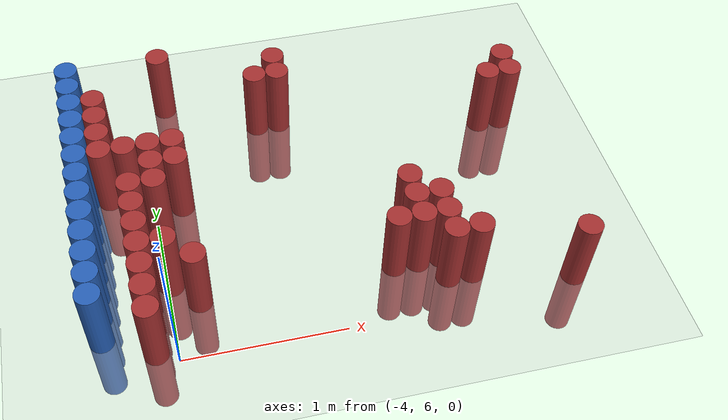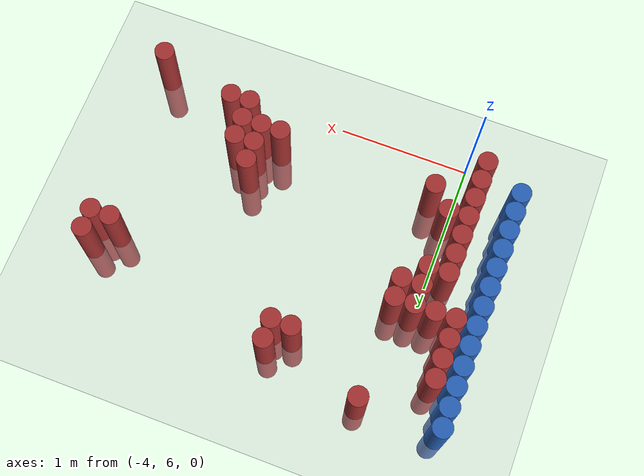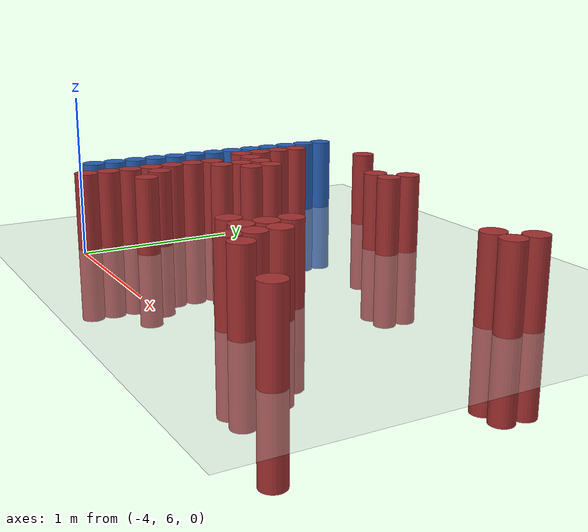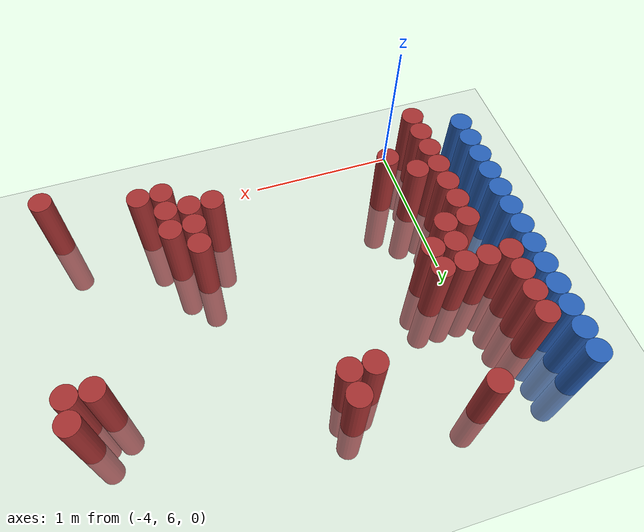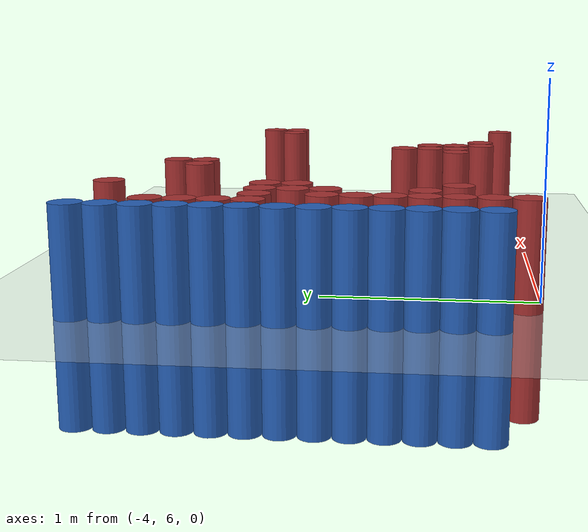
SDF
<sdf version="1.6">
 <world name="default">
  <model name="ground_plane">
   <static>1</static>
   <link name="link">
    <collision name="collision">
     <geometry><plane><normal>0 0 1</normal><size>100 100</size></plane></geometry>
     <surface><friction><ode><mu>100</mu><mu2>50</mu2></ode></friction></surface>
    </collision>
    <visual name="visual">
     <cast_shadows>0</cast_shadows>
     <geometry><plane><normal>0 0 1</normal><size>100 100</size></plane></geometry>
     <material>
      <script><uri>file://media/materials/scripts/gazebo.material</uri><name>Gazebo/Grey</name></script>
     </material>
    </visual>
   </link>
  </model>
  <model name="unit_cylinder_103">
   <static>1</static>
   <pose>-4.425000 6.225000 0.000000 0.000000 0.000000 0.000000</pose>
   <link name="link">
    <inertial>
     <mass>1</mass>
     <inertia><ixx>0.145833</ixx><ixy>0</ixy><ixz>0</ixz><iyy>0.145833</iyy><iyz>0</iyz><izz>0.125</izz></inertia>
    </inertial>
    <collision name="collision">
     <geometry><cylinder><radius>0.075000</radius><length>1</length></cylinder></geometry>
    </collision>
    <visual name="visual">
     <geometry><cylinder><radius>0.075000</radius><length>1</length></cylinder></geometry>
     <material>
      <ambient>0.152000 0.379000 0.720000 1</ambient>
      <diffuse>0.152000 0.379000 0.720000 1</diffuse>
     </material>
     <material>
      <script><name>Gazebo/Grey</name><uri>file://media/materials/scripts/gazebo.material</uri></script>
     </material>
    </visual>
   </link>
  </model>
  <model name="unit_cylinder_104">
   <static>1</static>
   <pose>-4.425000 6.375000 0.000000 0.000000 0.000000 0.000000</pose>
   <link name="link">
    <inertial>
     <mass>1</mass>
     <inertia><ixx>0.145833</ixx><ixy>0</ixy><ixz>0</ixz><iyy>0.145833</iyy><iyz>0</iyz><izz>0.125</izz></inertia>
    </inertial>
    <collision name="collision">
     <geometry><cylinder><radius>0.075000</radius><length>1</length></cylinder></geometry>
    </collision>
    <visual name="visual">
     <geometry><cylinder><radius>0.075000</radius><length>1</length></cylinder></geometry>
     <material>
      <ambient>0.152000 0.379000 0.720000 1</ambient>
      <diffuse>0.152000 0.379000 0.720000 1</diffuse>
     </material>
     <material>
      <script><name>Gazebo/Grey</name><uri>file://media/materials/scripts/gazebo.material</uri></script>
     </material>
    </visual>
   </link>
  </model>
  <model name="unit_cylinder_105">
   <static>1</static>
   <pose>-4.425000 6.525000 0.000000 0.000000 0.000000 0.000000</pose>
   <link name="link">
    <inertial>
     <mass>1</mass>
     <inertia><ixx>0.145833</ixx><ixy>0</ixy><ixz>0</ixz><iyy>0.145833</iyy><iyz>0</iyz><izz>0.125</izz></inertia>
    </inertial>
    <collision name="collision">
     <geometry><cylinder><radius>0.075000</radius><length>1</length></cylinder></geometry>
    </collision>
    <visual name="visual">
     <geometry><cylinder><radius>0.075000</radius><length>1</length></cylinder></geometry>
     <material>
      <ambient>0.152000 0.379000 0.720000 1</ambient>
      <diffuse>0.152000 0.379000 0.720000 1</diffuse>
     </material>
     <material>
      <script><name>Gazebo/Grey</name><uri>file://media/materials/scripts/gazebo.material</uri></script>
     </material>
    </visual>
   </link>
  </model>
  <model name="unit_cylinder_106">
   <static>1</static>
   <pose>-4.425000 6.675000 0.000000 0.000000 0.000000 0.000000</pose>
   <link name="link">
    <inertial>
     <mass>1</mass>
     <inertia><ixx>0.145833</ixx><ixy>0</ixy><ixz>0</ixz><iyy>0.145833</iyy><iyz>0</iyz><izz>0.125</izz></inertia>
    </inertial>
    <collision name="collision">
     <geometry><cylinder><radius>0.075000</radius><length>1</length></cylinder></geometry>
    </collision>
    <visual name="visual">
     <geometry><cylinder><radius>0.075000</radius><length>1</length></cylinder></geometry>
     <material>
      <ambient>0.152000 0.379000 0.720000 1</ambient>
      <diffuse>0.152000 0.379000 0.720000 1</diffuse>
     </material>
     <material>
      <script><name>Gazebo/Grey</name><uri>file://media/materials/scripts/gazebo.material</uri></script>
     </material>
    </visual>
   </link>
  </model>
  <model name="unit_cylinder_107">
   <static>1</static>
   <pose>-4.425000 6.825000 0.000000 0.000000 0.000000 0.000000</pose>
   <link name="link">
    <inertial>
     <mass>1</mass>
     <inertia><ixx>0.145833</ixx><ixy>0</ixy><ixz>0</ixz><iyy>0.145833</iyy><iyz>0</iyz><izz>0.125</izz></inertia>
    </inertial>
    <collision name="collision">
     <geometry><cylinder><radius>0.075000</radius><length>1</length></cylinder></geometry>
    </collision>
    <visual name="visual">
     <geometry><cylinder><radius>0.075000</radius><length>1</length></cylinder></geometry>
     <material>
      <ambient>0.152000 0.379000 0.720000 1</ambient>
      <diffuse>0.152000 0.379000 0.720000 1</diffuse>
     </material>
     <material>
      <script><name>Gazebo/Grey</name><uri>file://media/materials/scripts/gazebo.material</uri></script>
     </material>
    </visual>
   </link>
  </model>
  <model name="unit_cylinder_108">
   <static>1</static>
   <pose>-4.425000 6.975000 0.000000 0.000000 0.000000 0.000000</pose>
   <link name="link">
    <inertial>
     <mass>1</mass>
     <inertia><ixx>0.145833</ixx><ixy>0</ixy><ixz>0</ixz><iyy>0.145833</iyy><iyz>0</iyz><izz>0.125</izz></inertia>
    </inertial>
    <collision name="collision">
     <geometry><cylinder><radius>0.075000</radius><length>1</length></cylinder></geometry>
    </collision>
    <visual name="visual">
     <geometry><cylinder><radius>0.075000</radius><length>1</length></cylinder></geometry>
     <material>
      <ambient>0.152000 0.379000 0.720000 1</ambient>
      <diffuse>0.152000 0.379000 0.720000 1</diffuse>
     </material>
     <material>
      <script><name>Gazebo/Grey</name><uri>file://media/materials/scripts/gazebo.material</uri></script>
     </material>
    </visual>
   </link>
  </model>
  <model name="unit_cylinder_109">
   <static>1</static>
   <pose>-4.425000 7.125000 0.000000 0.000000 0.000000 0.000000</pose>
   <link name="link">
    <inertial>
     <mass>1</mass>
     <inertia><ixx>0.145833</ixx><ixy>0</ixy><ixz>0</ixz><iyy>0.145833</iyy><iyz>0</iyz><izz>0.125</izz></inertia>
    </inertial>
    <collision name="collision">
     <geometry><cylinder><radius>0.075000</radius><length>1</length></cylinder></geometry>
    </collision>
    <visual name="visual">
     <geometry><cylinder><radius>0.075000</radius><length>1</length></cylinder></geometry>
     <material>
      <ambient>0.152000 0.379000 0.720000 1</ambient>
      <diffuse>0.152000 0.379000 0.720000 1</diffuse>
     </material>
     <material>
      <script><name>Gazebo/Grey</name><uri>file://media/materials/scripts/gazebo.material</uri></script>
     </material>
    </visual>
   </link>
  </model>
  <model name="unit_cylinder_110">
   <static>1</static>
   <pose>-4.425000 7.275000 0.000000 0.000000 0.000000 0.000000</pose>
   <link name="link">
    <inertial>
     <mass>1</mass>
     <inertia><ixx>0.145833</ixx><ixy>0</ixy><ixz>0</ixz><iyy>0.145833</iyy><iyz>0</iyz><izz>0.125</izz></inertia>
    </inertial>
    <collision name="collision">
     <geometry><cylinder><radius>0.075000</radius><length>1</length></cylinder></geometry>
    </collision>
    <visual name="visual">
     <geometry><cylinder><radius>0.075000</radius><length>1</length></cylinder></geometry>
     <material>
      <ambient>0.152000 0.379000 0.720000 1</ambient>
      <diffuse>0.152000 0.379000 0.720000 1</diffuse>
     </material>
     <material>
      <script><name>Gazebo/Grey</name><uri>file://media/materials/scripts/gazebo.material</uri></script>
     </material>
    </visual>
   </link>
  </model>
  <model name="unit_cylinder_111">
   <static>1</static>
   <pose>-4.425000 7.425000 0.000000 0.000000 0.000000 0.000000</pose>
   <link name="link">
    <inertial>
     <mass>1</mass>
     <inertia><ixx>0.145833</ixx><ixy>0</ixy><ixz>0</ixz><iyy>0.145833</iyy><iyz>0</iyz><izz>0.125</izz></inertia>
    </inertial>
    <collision name="collision">
     <geometry><cylinder><radius>0.075000</radius><length>1</length></cylinder></geometry>
    </collision>
    <visual name="visual">
     <geometry><cylinder><radius>0.075000</radius><length>1</length></cylinder></geometry>
     <material>
      <ambient>0.152000 0.379000 0.720000 1</ambient>
      <diffuse>0.152000 0.379000 0.720000 1</diffuse>
     </material>
     <material>
      <script><name>Gazebo/Grey</name><uri>file://media/materials/scripts/gazebo.material</uri></script>
     </material>
    </visual>
   </link>
  </model>
  <model name="unit_cylinder_112">
   <static>1</static>
   <pose>-4.425000 7.575000 0.000000 0.000000 0.000000 0.000000</pose>
   <link name="link">
    <inertial>
     <mass>1</mass>
     <inertia><ixx>0.145833</ixx><ixy>0</ixy><ixz>0</ixz><iyy>0.145833</iyy><iyz>0</iyz><izz>0.125</izz></inertia>
    </inertial>
    <collision name="collision">
     <geometry><cylinder><radius>0.075000</radius><length>1</length></cylinder></geometry>
    </collision>
    <visual name="visual">
     <geometry><cylinder><radius>0.075000</radius><length>1</length></cylinder></geometry>
     <material>
      <ambient>0.152000 0.379000 0.720000 1</ambient>
      <diffuse>0.152000 0.379000 0.720000 1</diffuse>
     </material>
     <material>
      <script><name>Gazebo/Grey</name><uri>file://media/materials/scripts/gazebo.material</uri></script>
     </material>
    </visual>
   </link>
  </model>
  <model name="unit_cylinder_113">
   <static>1</static>
   <pose>-4.425000 7.725000 0.000000 0.000000 0.000000 0.000000</pose>
   <link name="link">
    <inertial>
     <mass>1</mass>
     <inertia><ixx>0.145833</ixx><ixy>0</ixy><ixz>0</ixz><iyy>0.145833</iyy><iyz>0</iyz><izz>0.125</izz></inertia>
    </inertial>
    <collision name="collision">
     <geometry><cylinder><radius>0.075000</radius><length>1</length></cylinder></geometry>
    </collision>
    <visual name="visual">
     <geometry><cylinder><radius>0.075000</radius><length>1</length></cylinder></geometry>
     <material>
      <ambient>0.152000 0.379000 0.720000 1</ambient>
      <diffuse>0.152000 0.379000 0.720000 1</diffuse>
     </material>
     <material>
      <script><name>Gazebo/Grey</name><uri>file://media/materials/scripts/gazebo.material</uri></script>
     </material>
    </visual>
   </link>
  </model>
  <model name="unit_cylinder_114">
   <static>1</static>
   <pose>-4.425000 7.875000 0.000000 0.000000 0.000000 0.000000</pose>
   <link name="link">
    <inertial>
     <mass>1</mass>
     <inertia><ixx>0.145833</ixx><ixy>0</ixy><ixz>0</ixz><iyy>0.145833</iyy><iyz>0</iyz><izz>0.125</izz></inertia>
    </inertial>
    <collision name="collision">
     <geometry><cylinder><radius>0.075000</radius><length>1</length></cylinder></geometry>
    </collision>
    <visual name="visual">
     <geometry><cylinder><radius>0.075000</radius><length>1</length></cylinder></geometry>
     <material>
      <ambient>0.152000 0.379000 0.720000 1</ambient>
      <diffuse>0.152000 0.379000 0.720000 1</diffuse>
     </material>
     <material>
      <script><name>Gazebo/Grey</name><uri>file://media/materials/scripts/gazebo.material</uri></script>
     </material>
    </visual>
   </link>
  </model>
  <model name="unit_cylinder_115">
   <static>1</static>
   <pose>-4.425000 8.025000 0.000000 0.000000 0.000000 0.000000</pose>
   <link name="link">
    <inertial>
     <mass>1</mass>
     <inertia><ixx>0.145833</ixx><ixy>0</ixy><ixz>0</ixz><iyy>0.145833</iyy><iyz>0</iyz><izz>0.125</izz></inertia>
    </inertial>
    <collision name="collision">
     <geometry><cylinder><radius>0.075000</radius><length>1</length></cylinder></geometry>
    </collision>
    <visual name="visual">
     <geometry><cylinder><radius>0.075000</radius><length>1</length></cylinder></geometry>
     <material>
      <ambient>0.152000 0.379000 0.720000 1</ambient>
      <diffuse>0.152000 0.379000 0.720000 1</diffuse>
     </material>
     <material>
      <script><name>Gazebo/Grey</name><uri>file://media/materials/scripts/gazebo.material</uri></script>
     </material>
    </visual>
   </link>
  </model>
  <model name="unit_cylinder_129">
   <static>1</static>
   <pose>-4.275000 7.275000 0.000000 0.000000 0.000000 0.000000</pose>
   <link name="link">
    <inertial>
     <mass>1</mass>
     <inertia><ixx>0.145833</ixx><ixy>0</ixy><ixz>0</ixz><iyy>0.145833</iyy><iyz>0</iyz><izz>0.125</izz></inertia>
    </inertial>
    <collision name="collision">
     <geometry><cylinder><radius>0.075000</radius><length>1</length></cylinder></geometry>
    </collision>
    <visual name="visual">
     <geometry><cylinder><radius>0.075000</radius><length>1</length></cylinder></geometry>
     <material>
      <ambient>0.648000 0.192000 0.192000 1</ambient>
      <diffuse>0.648000 0.192000 0.192000 1</diffuse>
     </material>
     <material>
      <script><name>Gazebo/Grey</name><uri>file://media/materials/scripts/gazebo.material</uri></script>
     </material>
    </visual>
   </link>
  </model>
  <model name="unit_cylinder_130">
   <static>1</static>
   <pose>-4.275000 7.425000 0.000000 0.000000 0.000000 0.000000</pose>
   <link name="link">
    <inertial>
     <mass>1</mass>
     <inertia><ixx>0.145833</ixx><ixy>0</ixy><ixz>0</ixz><iyy>0.145833</iyy><iyz>0</iyz><izz>0.125</izz></inertia>
    </inertial>
    <collision name="collision">
     <geometry><cylinder><radius>0.075000</radius><length>1</length></cylinder></geometry>
    </collision>
    <visual name="visual">
     <geometry><cylinder><radius>0.075000</radius><length>1</length></cylinder></geometry>
     <material>
      <ambient>0.648000 0.192000 0.192000 1</ambient>
      <diffuse>0.648000 0.192000 0.192000 1</diffuse>
     </material>
     <material>
      <script><name>Gazebo/Grey</name><uri>file://media/materials/scripts/gazebo.material</uri></script>
     </material>
    </visual>
   </link>
  </model>
  <model name="unit_cylinder_131">
   <static>1</static>
   <pose>-4.275000 7.575000 0.000000 0.000000 0.000000 0.000000</pose>
   <link name="link">
    <inertial>
     <mass>1</mass>
     <inertia><ixx>0.145833</ixx><ixy>0</ixy><ixz>0</ixz><iyy>0.145833</iyy><iyz>0</iyz><izz>0.125</izz></inertia>
    </inertial>
    <collision name="collision">
     <geometry><cylinder><radius>0.075000</radius><length>1</length></cylinder></geometry>
    </collision>
    <visual name="visual">
     <geometry><cylinder><radius>0.075000</radius><length>1</length></cylinder></geometry>
     <material>
      <ambient>0.648000 0.192000 0.192000 1</ambient>
      <diffuse>0.648000 0.192000 0.192000 1</diffuse>
     </material>
     <material>
      <script><name>Gazebo/Grey</name><uri>file://media/materials/scripts/gazebo.material</uri></script>
     </material>
    </visual>
   </link>
  </model>
  <model name="unit_cylinder_132">
   <static>1</static>
   <pose>-4.275000 7.725000 0.000000 0.000000 0.000000 0.000000</pose>
   <link name="link">
    <inertial>
     <mass>1</mass>
     <inertia><ixx>0.145833</ixx><ixy>0</ixy><ixz>0</ixz><iyy>0.145833</iyy><iyz>0</iyz><izz>0.125</izz></inertia>
    </inertial>
    <collision name="collision">
     <geometry><cylinder><radius>0.075000</radius><length>1</length></cylinder></geometry>
    </collision>
    <visual name="visual">
     <geometry><cylinder><radius>0.075000</radius><length>1</length></cylinder></geometry>
     <material>
      <ambient>0.648000 0.192000 0.192000 1</ambient>
      <diffuse>0.648000 0.192000 0.192000 1</diffuse>
     </material>
     <material>
      <script><name>Gazebo/Grey</name><uri>file://media/materials/scripts/gazebo.material</uri></script>
     </material>
    </visual>
   </link>
  </model>
  <model name="unit_cylinder_140">
   <static>1</static>
   <pose>-4.125000 6.075000 0.000000 0.000000 0.000000 0.000000</pose>
   <link name="link">
    <inertial>
     <mass>1</mass>
     <inertia><ixx>0.145833</ixx><ixy>0</ixy><ixz>0</ixz><iyy>0.145833</iyy><iyz>0</iyz><izz>0.125</izz></inertia>
    </inertial>
    <collision name="collision">
     <geometry><cylinder><radius>0.075000</radius><length>1</length></cylinder></geometry>
    </collision>
    <visual name="visual">
     <geometry><cylinder><radius>0.075000</radius><length>1</length></cylinder></geometry>
     <material>
      <ambient>0.648000 0.192000 0.192000 1</ambient>
      <diffuse>0.648000 0.192000 0.192000 1</diffuse>
     </material>
     <material>
      <script><name>Gazebo/Grey</name><uri>file://media/materials/scripts/gazebo.material</uri></script>
     </material>
    </visual>
   </link>
  </model>
  <model name="unit_cylinder_141">
   <static>1</static>
   <pose>-4.125000 6.225000 0.000000 0.000000 0.000000 0.000000</pose>
   <link name="link">
    <inertial>
     <mass>1</mass>
     <inertia><ixx>0.145833</ixx><ixy>0</ixy><ixz>0</ixz><iyy>0.145833</iyy><iyz>0</iyz><izz>0.125</izz></inertia>
    </inertial>
    <collision name="collision">
     <geometry><cylinder><radius>0.075000</radius><length>1</length></cylinder></geometry>
    </collision>
    <visual name="visual">
     <geometry><cylinder><radius>0.075000</radius><length>1</length></cylinder></geometry>
     <material>
      <ambient>0.648000 0.192000 0.192000 1</ambient>
      <diffuse>0.648000 0.192000 0.192000 1</diffuse>
     </material>
     <material>
      <script><name>Gazebo/Grey</name><uri>file://media/materials/scripts/gazebo.material</uri></script>
     </material>
    </visual>
   </link>
  </model>
  <model name="unit_cylinder_142">
   <static>1</static>
   <pose>-4.125000 6.375000 0.000000 0.000000 0.000000 0.000000</pose>
   <link name="link">
    <inertial>
     <mass>1</mass>
     <inertia><ixx>0.145833</ixx><ixy>0</ixy><ixz>0</ixz><iyy>0.145833</iyy><iyz>0</iyz><izz>0.125</izz></inertia>
    </inertial>
    <collision name="collision">
     <geometry><cylinder><radius>0.075000</radius><length>1</length></cylinder></geometry>
    </collision>
    <visual name="visual">
     <geometry><cylinder><radius>0.075000</radius><length>1</length></cylinder></geometry>
     <material>
      <ambient>0.648000 0.192000 0.192000 1</ambient>
      <diffuse>0.648000 0.192000 0.192000 1</diffuse>
     </material>
     <material>
      <script><name>Gazebo/Grey</name><uri>file://media/materials/scripts/gazebo.material</uri></script>
     </material>
    </visual>
   </link>
  </model>
  <model name="unit_cylinder_143">
   <static>1</static>
   <pose>-4.125000 6.525000 0.000000 0.000000 0.000000 0.000000</pose>
   <link name="link">
    <inertial>
     <mass>1</mass>
     <inertia><ixx>0.145833</ixx><ixy>0</ixy><ixz>0</ixz><iyy>0.145833</iyy><iyz>0</iyz><izz>0.125</izz></inertia>
    </inertial>
    <collision name="collision">
     <geometry><cylinder><radius>0.075000</radius><length>1</length></cylinder></geometry>
    </collision>
    <visual name="visual">
     <geometry><cylinder><radius>0.075000</radius><length>1</length></cylinder></geometry>
     <material>
      <ambient>0.648000 0.192000 0.192000 1</ambient>
      <diffuse>0.648000 0.192000 0.192000 1</diffuse>
     </material>
     <material>
      <script><name>Gazebo/Grey</name><uri>file://media/materials/scripts/gazebo.material</uri></script>
     </material>
    </visual>
   </link>
  </model>
  <model name="unit_cylinder_144">
   <static>1</static>
   <pose>-4.125000 6.675000 0.000000 0.000000 0.000000 0.000000</pose>
   <link name="link">
    <inertial>
     <mass>1</mass>
     <inertia><ixx>0.145833</ixx><ixy>0</ixy><ixz>0</ixz><iyy>0.145833</iyy><iyz>0</iyz><izz>0.125</izz></inertia>
    </inertial>
    <collision name="collision">
     <geometry><cylinder><radius>0.075000</radius><length>1</length></cylinder></geometry>
    </collision>
    <visual name="visual">
     <geometry><cylinder><radius>0.075000</radius><length>1</length></cylinder></geometry>
     <material>
      <ambient>0.648000 0.192000 0.192000 1</ambient>
      <diffuse>0.648000 0.192000 0.192000 1</diffuse>
     </material>
     <material>
      <script><name>Gazebo/Grey</name><uri>file://media/materials/scripts/gazebo.material</uri></script>
     </material>
    </visual>
   </link>
  </model>
  <model name="unit_cylinder_145">
   <static>1</static>
   <pose>-4.125000 6.825000 0.000000 0.000000 0.000000 0.000000</pose>
   <link name="link">
    <inertial>
     <mass>1</mass>
     <inertia><ixx>0.145833</ixx><ixy>0</ixy><ixz>0</ixz><iyy>0.145833</iyy><iyz>0</iyz><izz>0.125</izz></inertia>
    </inertial>
    <collision name="collision">
     <geometry><cylinder><radius>0.075000</radius><length>1</length></cylinder></geometry>
    </collision>
    <visual name="visual">
     <geometry><cylinder><radius>0.075000</radius><length>1</length></cylinder></geometry>
     <material>
      <ambient>0.648000 0.192000 0.192000 1</ambient>
      <diffuse>0.648000 0.192000 0.192000 1</diffuse>
     </material>
     <material>
      <script><name>Gazebo/Grey</name><uri>file://media/materials/scripts/gazebo.material</uri></script>
     </material>
    </visual>
   </link>
  </model>
  <model name="unit_cylinder_146">
   <static>1</static>
   <pose>-4.125000 6.975000 0.000000 0.000000 0.000000 0.000000</pose>
   <link name="link">
    <inertial>
     <mass>1</mass>
     <inertia><ixx>0.145833</ixx><ixy>0</ixy><ixz>0</ixz><iyy>0.145833</iyy><iyz>0</iyz><izz>0.125</izz></inertia>
    </inertial>
    <collision name="collision">
     <geometry><cylinder><radius>0.075000</radius><length>1</length></cylinder></geometry>
    </collision>
    <visual name="visual">
     <geometry><cylinder><radius>0.075000</radius><length>1</length></cylinder></geometry>
     <material>
      <ambient>0.648000 0.192000 0.192000 1</ambient>
      <diffuse>0.648000 0.192000 0.192000 1</diffuse>
     </material>
     <material>
      <script><name>Gazebo/Grey</name><uri>file://media/materials/scripts/gazebo.material</uri></script>
     </material>
    </visual>
   </link>
  </model>
  <model name="unit_cylinder_147">
   <static>1</static>
   <pose>-4.125000 7.275000 0.000000 0.000000 0.000000 0.000000</pose>
   <link name="link">
    <inertial>
     <mass>1</mass>
     <inertia><ixx>0.145833</ixx><ixy>0</ixy><ixz>0</ixz><iyy>0.145833</iyy><iyz>0</iyz><izz>0.125</izz></inertia>
    </inertial>
    <collision name="collision">
     <geometry><cylinder><radius>0.075000</radius><length>1</length></cylinder></geometry>
    </collision>
    <visual name="visual">
     <geometry><cylinder><radius>0.075000</radius><length>1</length></cylinder></geometry>
     <material>
      <ambient>0.648000 0.192000 0.192000 1</ambient>
      <diffuse>0.648000 0.192000 0.192000 1</diffuse>
     </material>
     <material>
      <script><name>Gazebo/Grey</name><uri>file://media/materials/scripts/gazebo.material</uri></script>
     </material>
    </visual>
   </link>
  </model>
  <model name="unit_cylinder_149">
   <static>1</static>
   <pose>-3.975000 6.525000 0.000000 0.000000 0.000000 0.000000</pose>
   <link name="link">
    <inertial>
     <mass>1</mass>
     <inertia><ixx>0.145833</ixx><ixy>0</ixy><ixz>0</ixz><iyy>0.145833</iyy><iyz>0</iyz><izz>0.125</izz></inertia>
    </inertial>
    <collision name="collision">
     <geometry><cylinder><radius>0.075000</radius><length>1</length></cylinder></geometry>
    </collision>
    <visual name="visual">
     <geometry><cylinder><radius>0.075000</radius><length>1</length></cylinder></geometry>
     <material>
      <ambient>0.648000 0.192000 0.192000 1</ambient>
      <diffuse>0.648000 0.192000 0.192000 1</diffuse>
     </material>
     <material>
      <script><name>Gazebo/Grey</name><uri>file://media/materials/scripts/gazebo.material</uri></script>
     </material>
    </visual>
   </link>
  </model>
  <model name="unit_cylinder_150">
   <static>1</static>
   <pose>-3.975000 6.975000 0.000000 0.000000 0.000000 0.000000</pose>
   <link name="link">
    <inertial>
     <mass>1</mass>
     <inertia><ixx>0.145833</ixx><ixy>0</ixy><ixz>0</ixz><iyy>0.145833</iyy><iyz>0</iyz><izz>0.125</izz></inertia>
    </inertial>
    <collision name="collision">
     <geometry><cylinder><radius>0.075000</radius><length>1</length></cylinder></geometry>
    </collision>
    <visual name="visual">
     <geometry><cylinder><radius>0.075000</radius><length>1</length></cylinder></geometry>
     <material>
      <ambient>0.648000 0.192000 0.192000 1</ambient>
      <diffuse>0.648000 0.192000 0.192000 1</diffuse>
     </material>
     <material>
      <script><name>Gazebo/Grey</name><uri>file://media/materials/scripts/gazebo.material</uri></script>
     </material>
    </visual>
   </link>
  </model>
  <model name="unit_cylinder_151">
   <static>1</static>
   <pose>-3.975000 7.125000 0.000000 0.000000 0.000000 0.000000</pose>
   <link name="link">
    <inertial>
     <mass>1</mass>
     <inertia><ixx>0.145833</ixx><ixy>0</ixy><ixz>0</ixz><iyy>0.145833</iyy><iyz>0</iyz><izz>0.125</izz></inertia>
    </inertial>
    <collision name="collision">
     <geometry><cylinder><radius>0.075000</radius><length>1</length></cylinder></geometry>
    </collision>
    <visual name="visual">
     <geometry><cylinder><radius>0.075000</radius><length>1</length></cylinder></geometry>
     <material>
      <ambient>0.648000 0.192000 0.192000 1</ambient>
      <diffuse>0.648000 0.192000 0.192000 1</diffuse>
     </material>
     <material>
      <script><name>Gazebo/Grey</name><uri>file://media/materials/scripts/gazebo.material</uri></script>
     </material>
    </visual>
   </link>
  </model>
  <model name="unit_cylinder_152">
   <static>1</static>
   <pose>-3.975000 7.275000 0.000000 0.000000 0.000000 0.000000</pose>
   <link name="link">
    <inertial>
     <mass>1</mass>
     <inertia><ixx>0.145833</ixx><ixy>0</ixy><ixz>0</ixz><iyy>0.145833</iyy><iyz>0</iyz><izz>0.125</izz></inertia>
    </inertial>
    <collision name="collision">
     <geometry><cylinder><radius>0.075000</radius><length>1</length></cylinder></geometry>
    </collision>
    <visual name="visual">
     <geometry><cylinder><radius>0.075000</radius><length>1</length></cylinder></geometry>
     <material>
      <ambient>0.648000 0.192000 0.192000 1</ambient>
      <diffuse>0.648000 0.192000 0.192000 1</diffuse>
     </material>
     <material>
      <script><name>Gazebo/Grey</name><uri>file://media/materials/scripts/gazebo.material</uri></script>
     </material>
    </visual>
   </link>
  </model>
  <model name="unit_cylinder_154">
   <static>1</static>
   <pose>-3.825000 6.375000 0.000000 0.000000 0.000000 0.000000</pose>
   <link name="link">
    <inertial>
     <mass>1</mass>
     <inertia><ixx>0.145833</ixx><ixy>0</ixy><ixz>0</ixz><iyy>0.145833</iyy><iyz>0</iyz><izz>0.125</izz></inertia>
    </inertial>
    <collision name="collision">
     <geometry><cylinder><radius>0.075000</radius><length>1</length></cylinder></geometry>
    </collision>
    <visual name="visual">
     <geometry><cylinder><radius>0.075000</radius><length>1</length></cylinder></geometry>
     <material>
      <ambient>0.648000 0.192000 0.192000 1</ambient>
      <diffuse>0.648000 0.192000 0.192000 1</diffuse>
     </material>
     <material>
      <script><name>Gazebo/Grey</name><uri>file://media/materials/scripts/gazebo.material</uri></script>
     </material>
    </visual>
   </link>
  </model>
  <model name="unit_cylinder_155">
   <static>1</static>
   <pose>-3.825000 7.125000 0.000000 0.000000 0.000000 0.000000</pose>
   <link name="link">
    <inertial>
     <mass>1</mass>
     <inertia><ixx>0.145833</ixx><ixy>0</ixy><ixz>0</ixz><iyy>0.145833</iyy><iyz>0</iyz><izz>0.125</izz></inertia>
    </inertial>
    <collision name="collision">
     <geometry><cylinder><radius>0.075000</radius><length>1</length></cylinder></geometry>
    </collision>
    <visual name="visual">
     <geometry><cylinder><radius>0.075000</radius><length>1</length></cylinder></geometry>
     <material>
      <ambient>0.648000 0.192000 0.192000 1</ambient>
      <diffuse>0.648000 0.192000 0.192000 1</diffuse>
     </material>
     <material>
      <script><name>Gazebo/Grey</name><uri>file://media/materials/scripts/gazebo.material</uri></script>
     </material>
    </visual>
   </link>
  </model>
  <model name="unit_cylinder_156">
   <static>1</static>
   <pose>-3.825000 7.275000 0.000000 0.000000 0.000000 0.000000</pose>
   <link name="link">
    <inertial>
     <mass>1</mass>
     <inertia><ixx>0.145833</ixx><ixy>0</ixy><ixz>0</ixz><iyy>0.145833</iyy><iyz>0</iyz><izz>0.125</izz></inertia>
    </inertial>
    <collision name="collision">
     <geometry><cylinder><radius>0.075000</radius><length>1</length></cylinder></geometry>
    </collision>
    <visual name="visual">
     <geometry><cylinder><radius>0.075000</radius><length>1</length></cylinder></geometry>
     <material>
      <ambient>0.648000 0.192000 0.192000 1</ambient>
      <diffuse>0.648000 0.192000 0.192000 1</diffuse>
     </material>
     <material>
      <script><name>Gazebo/Grey</name><uri>file://media/materials/scripts/gazebo.material</uri></script>
     </material>
    </visual>
   </link>
  </model>
  <model name="unit_cylinder_157">
   <static>1</static>
   <pose>-3.825000 8.025000 0.000000 0.000000 0.000000 0.000000</pose>
   <link name="link">
    <inertial>
     <mass>1</mass>
     <inertia><ixx>0.145833</ixx><ixy>0</ixy><ixz>0</ixz><iyy>0.145833</iyy><iyz>0</iyz><izz>0.125</izz></inertia>
    </inertial>
    <collision name="collision">
     <geometry><cylinder><radius>0.075000</radius><length>1</length></cylinder></geometry>
    </collision>
    <visual name="visual">
     <geometry><cylinder><radius>0.075000</radius><length>1</length></cylinder></geometry>
     <material>
      <ambient>0.648000 0.192000 0.192000 1</ambient>
      <diffuse>0.648000 0.192000 0.192000 1</diffuse>
     </material>
     <material>
      <script><name>Gazebo/Grey</name><uri>file://media/materials/scripts/gazebo.material</uri></script>
     </material>
    </visual>
   </link>
  </model>
  <model name="unit_cylinder_174">
   <static>1</static>
   <pose>-3.225000 7.725000 0.000000 0.000000 0.000000 0.000000</pose>
   <link name="link">
    <inertial>
     <mass>1</mass>
     <inertia><ixx>0.145833</ixx><ixy>0</ixy><ixz>0</ixz><iyy>0.145833</iyy><iyz>0</iyz><izz>0.125</izz></inertia>
    </inertial>
    <collision name="collision">
     <geometry><cylinder><radius>0.075000</radius><length>1</length></cylinder></geometry>
    </collision>
    <visual name="visual">
     <geometry><cylinder><radius>0.075000</radius><length>1</length></cylinder></geometry>
     <material>
      <ambient>0.648000 0.192000 0.192000 1</ambient>
      <diffuse>0.648000 0.192000 0.192000 1</diffuse>
     </material>
     <material>
      <script><name>Gazebo/Grey</name><uri>file://media/materials/scripts/gazebo.material</uri></script>
     </material>
    </visual>
   </link>
  </model>
  <model name="unit_cylinder_179">
   <static>1</static>
   <pose>-3.075000 7.725000 0.000000 0.000000 0.000000 0.000000</pose>
   <link name="link">
    <inertial>
     <mass>1</mass>
     <inertia><ixx>0.145833</ixx><ixy>0</ixy><ixz>0</ixz><iyy>0.145833</iyy><iyz>0</iyz><izz>0.125</izz></inertia>
    </inertial>
    <collision name="collision">
     <geometry><cylinder><radius>0.075000</radius><length>1</length></cylinder></geometry>
    </collision>
    <visual name="visual">
     <geometry><cylinder><radius>0.075000</radius><length>1</length></cylinder></geometry>
     <material>
      <ambient>0.648000 0.192000 0.192000 1</ambient>
      <diffuse>0.648000 0.192000 0.192000 1</diffuse>
     </material>
     <material>
      <script><name>Gazebo/Grey</name><uri>file://media/materials/scripts/gazebo.material</uri></script>
     </material>
    </visual>
   </link>
  </model>
  <model name="unit_cylinder_180">
   <static>1</static>
   <pose>-3.075000 7.875000 0.000000 0.000000 0.000000 0.000000</pose>
   <link name="link">
    <inertial>
     <mass>1</mass>
     <inertia><ixx>0.145833</ixx><ixy>0</ixy><ixz>0</ixz><iyy>0.145833</iyy><iyz>0</iyz><izz>0.125</izz></inertia>
    </inertial>
    <collision name="collision">
     <geometry><cylinder><radius>0.075000</radius><length>1</length></cylinder></geometry>
    </collision>
    <visual name="visual">
     <geometry><cylinder><radius>0.075000</radius><length>1</length></cylinder></geometry>
     <material>
      <ambient>0.648000 0.192000 0.192000 1</ambient>
      <diffuse>0.648000 0.192000 0.192000 1</diffuse>
     </material>
     <material>
      <script><name>Gazebo/Grey</name><uri>file://media/materials/scripts/gazebo.material</uri></script>
     </material>
    </visual>
   </link>
  </model>
  <model name="unit_cylinder_191">
   <static>1</static>
   <pose>-2.625000 6.375000 0.000000 0.000000 0.000000 0.000000</pose>
   <link name="link">
    <inertial>
     <mass>1</mass>
     <inertia><ixx>0.145833</ixx><ixy>0</ixy><ixz>0</ixz><iyy>0.145833</iyy><iyz>0</iyz><izz>0.125</izz></inertia>
    </inertial>
    <collision name="collision">
     <geometry><cylinder><radius>0.075000</radius><length>1</length></cylinder></geometry>
    </collision>
    <visual name="visual">
     <geometry><cylinder><radius>0.075000</radius><length>1</length></cylinder></geometry>
     <material>
      <ambient>0.648000 0.192000 0.192000 1</ambient>
      <diffuse>0.648000 0.192000 0.192000 1</diffuse>
     </material>
     <material>
      <script><name>Gazebo/Grey</name><uri>file://media/materials/scripts/gazebo.material</uri></script>
     </material>
    </visual>
   </link>
  </model>
  <model name="unit_cylinder_193">
   <static>1</static>
   <pose>-2.475000 6.375000 0.000000 0.000000 0.000000 0.000000</pose>
   <link name="link">
    <inertial>
     <mass>1</mass>
     <inertia><ixx>0.145833</ixx><ixy>0</ixy><ixz>0</ixz><iyy>0.145833</iyy><iyz>0</iyz><izz>0.125</izz></inertia>
    </inertial>
    <collision name="collision">
     <geometry><cylinder><radius>0.075000</radius><length>1</length></cylinder></geometry>
    </collision>
    <visual name="visual">
     <geometry><cylinder><radius>0.075000</radius><length>1</length></cylinder></geometry>
     <material>
      <ambient>0.648000 0.192000 0.192000 1</ambient>
      <diffuse>0.648000 0.192000 0.192000 1</diffuse>
     </material>
     <material>
      <script><name>Gazebo/Grey</name><uri>file://media/materials/scripts/gazebo.material</uri></script>
     </material>
    </visual>
   </link>
  </model>
  <model name="unit_cylinder_194">
   <static>1</static>
   <pose>-2.475000 6.525000 0.000000 0.000000 0.000000 0.000000</pose>
   <link name="link">
    <inertial>
     <mass>1</mass>
     <inertia><ixx>0.145833</ixx><ixy>0</ixy><ixz>0</ixz><iyy>0.145833</iyy><iyz>0</iyz><izz>0.125</izz></inertia>
    </inertial>
    <collision name="collision">
     <geometry><cylinder><radius>0.075000</radius><length>1</length></cylinder></geometry>
    </collision>
    <visual name="visual">
     <geometry><cylinder><radius>0.075000</radius><length>1</length></cylinder></geometry>
     <material>
      <ambient>0.648000 0.192000 0.192000 1</ambient>
      <diffuse>0.648000 0.192000 0.192000 1</diffuse>
     </material>
     <material>
      <script><name>Gazebo/Grey</name><uri>file://media/materials/scripts/gazebo.material</uri></script>
     </material>
    </visual>
   </link>
  </model>
  <model name="unit_cylinder_195">
   <static>1</static>
   <pose>-2.475000 6.675000 0.000000 0.000000 0.000000 0.000000</pose>
   <link name="link">
    <inertial>
     <mass>1</mass>
     <inertia><ixx>0.145833</ixx><ixy>0</ixy><ixz>0</ixz><iyy>0.145833</iyy><iyz>0</iyz><izz>0.125</izz></inertia>
    </inertial>
    <collision name="collision">
     <geometry><cylinder><radius>0.075000</radius><length>1</length></cylinder></geometry>
    </collision>
    <visual name="visual">
     <geometry><cylinder><radius>0.075000</radius><length>1</length></cylinder></geometry>
     <material>
      <ambient>0.648000 0.192000 0.192000 1</ambient>
      <diffuse>0.648000 0.192000 0.192000 1</diffuse>
     </material>
     <material>
      <script><name>Gazebo/Grey</name><uri>file://media/materials/scripts/gazebo.material</uri></script>
     </material>
    </visual>
   </link>
  </model>
  <model name="unit_cylinder_198">
   <static>1</static>
   <pose>-2.325000 6.225000 0.000000 0.000000 0.000000 0.000000</pose>
   <link name="link">
    <inertial>
     <mass>1</mass>
     <inertia><ixx>0.145833</ixx><ixy>0</ixy><ixz>0</ixz><iyy>0.145833</iyy><iyz>0</iyz><izz>0.125</izz></inertia>
    </inertial>
    <collision name="collision">
     <geometry><cylinder><radius>0.075000</radius><length>1</length></cylinder></geometry>
    </collision>
    <visual name="visual">
     <geometry><cylinder><radius>0.075000</radius><length>1</length></cylinder></geometry>
     <material>
      <ambient>0.648000 0.192000 0.192000 1</ambient>
      <diffuse>0.648000 0.192000 0.192000 1</diffuse>
     </material>
     <material>
      <script><name>Gazebo/Grey</name><uri>file://media/materials/scripts/gazebo.material</uri></script>
     </material>
    </visual>
   </link>
  </model>
  <model name="unit_cylinder_199">
   <static>1</static>
   <pose>-2.325000 6.375000 0.000000 0.000000 0.000000 0.000000</pose>
   <link name="link">
    <inertial>
     <mass>1</mass>
     <inertia><ixx>0.145833</ixx><ixy>0</ixy><ixz>0</ixz><iyy>0.145833</iyy><iyz>0</iyz><izz>0.125</izz></inertia>
    </inertial>
    <collision name="collision">
     <geometry><cylinder><radius>0.075000</radius><length>1</length></cylinder></geometry>
    </collision>
    <visual name="visual">
     <geometry><cylinder><radius>0.075000</radius><length>1</length></cylinder></geometry>
     <material>
      <ambient>0.648000 0.192000 0.192000 1</ambient>
      <diffuse>0.648000 0.192000 0.192000 1</diffuse>
     </material>
     <material>
      <script><name>Gazebo/Grey</name><uri>file://media/materials/scripts/gazebo.material</uri></script>
     </material>
    </visual>
   </link>
  </model>
  <model name="unit_cylinder_200">
   <static>1</static>
   <pose>-2.325000 6.525000 0.000000 0.000000 0.000000 0.000000</pose>
   <link name="link">
    <inertial>
     <mass>1</mass>
     <inertia><ixx>0.145833</ixx><ixy>0</ixy><ixz>0</ixz><iyy>0.145833</iyy><iyz>0</iyz><izz>0.125</izz></inertia>
    </inertial>
    <collision name="collision">
     <geometry><cylinder><radius>0.075000</radius><length>1</length></cylinder></geometry>
    </collision>
    <visual name="visual">
     <geometry><cylinder><radius>0.075000</radius><length>1</length></cylinder></geometry>
     <material>
      <ambient>0.648000 0.192000 0.192000 1</ambient>
      <diffuse>0.648000 0.192000 0.192000 1</diffuse>
     </material>
     <material>
      <script><name>Gazebo/Grey</name><uri>file://media/materials/scripts/gazebo.material</uri></script>
     </material>
    </visual>
   </link>
  </model>
  <model name="unit_cylinder_203">
   <static>1</static>
   <pose>-2.175000 6.225000 0.000000 0.000000 0.000000 0.000000</pose>
   <link name="link">
    <inertial>
     <mass>1</mass>
     <inertia><ixx>0.145833</ixx><ixy>0</ixy><ixz>0</ixz><iyy>0.145833</iyy><iyz>0</iyz><izz>0.125</izz></inertia>
    </inertial>
    <collision name="collision">
     <geometry><cylinder><radius>0.075000</radius><length>1</length></cylinder></geometry>
    </collision>
    <visual name="visual">
     <geometry><cylinder><radius>0.075000</radius><length>1</length></cylinder></geometry>
     <material>
      <ambient>0.648000 0.192000 0.192000 1</ambient>
      <diffuse>0.648000 0.192000 0.192000 1</diffuse>
     </material>
     <material>
      <script><name>Gazebo/Grey</name><uri>file://media/materials/scripts/gazebo.material</uri></script>
     </material>
    </visual>
   </link>
  </model>
  <model name="unit_cylinder_214">
   <static>1</static>
   <pose>-1.725000 7.425000 0.000000 0.000000 0.000000 0.000000</pose>
   <link name="link">
    <inertial>
     <mass>1</mass>
     <inertia><ixx>0.145833</ixx><ixy>0</ixy><ixz>0</ixz><iyy>0.145833</iyy><iyz>0</iyz><izz>0.125</izz></inertia>
    </inertial>
    <collision name="collision">
     <geometry><cylinder><radius>0.075000</radius><length>1</length></cylinder></geometry>
    </collision>
    <visual name="visual">
     <geometry><cylinder><radius>0.075000</radius><length>1</length></cylinder></geometry>
     <material>
      <ambient>0.648000 0.192000 0.192000 1</ambient>
      <diffuse>0.648000 0.192000 0.192000 1</diffuse>
     </material>
     <material>
      <script><name>Gazebo/Grey</name><uri>file://media/materials/scripts/gazebo.material</uri></script>
     </material>
    </visual>
   </link>
  </model>
  <model name="unit_cylinder_218">
   <static>1</static>
   <pose>-1.575000 6.075000 0.000000 0.000000 0.000000 0.000000</pose>
   <link name="link">
    <inertial>
     <mass>1</mass>
     <inertia><ixx>0.145833</ixx><ixy>0</ixy><ixz>0</ixz><iyy>0.145833</iyy><iyz>0</iyz><izz>0.125</izz></inertia>
    </inertial>
    <collision name="collision">
     <geometry><cylinder><radius>0.075000</radius><length>1</length></cylinder></geometry>
    </collision>
    <visual name="visual">
     <geometry><cylinder><radius>0.075000</radius><length>1</length></cylinder></geometry>
     <material>
      <ambient>0.648000 0.192000 0.192000 1</ambient>
      <diffuse>0.648000 0.192000 0.192000 1</diffuse>
     </material>
     <material>
      <script><name>Gazebo/Grey</name><uri>file://media/materials/scripts/gazebo.material</uri></script>
     </material>
    </visual>
   </link>
  </model>
  <model name="unit_cylinder_219">
   <static>1</static>
   <pose>-1.575000 7.425000 0.000000 0.000000 0.000000 0.000000</pose>
   <link name="link">
    <inertial>
     <mass>1</mass>
     <inertia><ixx>0.145833</ixx><ixy>0</ixy><ixz>0</ixz><iyy>0.145833</iyy><iyz>0</iyz><izz>0.125</izz></inertia>
    </inertial>
    <collision name="collision">
     <geometry><cylinder><radius>0.075000</radius><length>1</length></cylinder></geometry>
    </collision>
    <visual name="visual">
     <geometry><cylinder><radius>0.075000</radius><length>1</length></cylinder></geometry>
     <material>
      <ambient>0.648000 0.192000 0.192000 1</ambient>
      <diffuse>0.648000 0.192000 0.192000 1</diffuse>
     </material>
     <material>
      <script><name>Gazebo/Grey</name><uri>file://media/materials/scripts/gazebo.material</uri></script>
     </material>
    </visual>
   </link>
  </model>
  <model name="unit_cylinder_220">
   <static>1</static>
   <pose>-1.575000 7.575000 0.000000 0.000000 0.000000 0.000000</pose>
   <link name="link">
    <inertial>
     <mass>1</mass>
     <inertia><ixx>0.145833</ixx><ixy>0</ixy><ixz>0</ixz><iyy>0.145833</iyy><iyz>0</iyz><izz>0.125</izz></inertia>
    </inertial>
    <collision name="collision">
     <geometry><cylinder><radius>0.075000</radius><length>1</length></cylinder></geometry>
    </collision>
    <visual name="visual">
     <geometry><cylinder><radius>0.075000</radius><length>1</length></cylinder></geometry>
     <material>
      <ambient>0.648000 0.192000 0.192000 1</ambient>
      <diffuse>0.648000 0.192000 0.192000 1</diffuse>
     </material>
     <material>
      <script><name>Gazebo/Grey</name><uri>file://media/materials/scripts/gazebo.material</uri></script>
     </material>
    </visual>
   </link>
  </model>
 </world>
</sdf>
